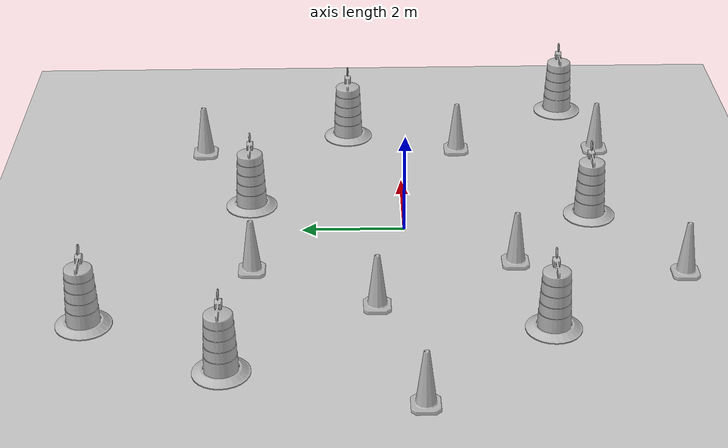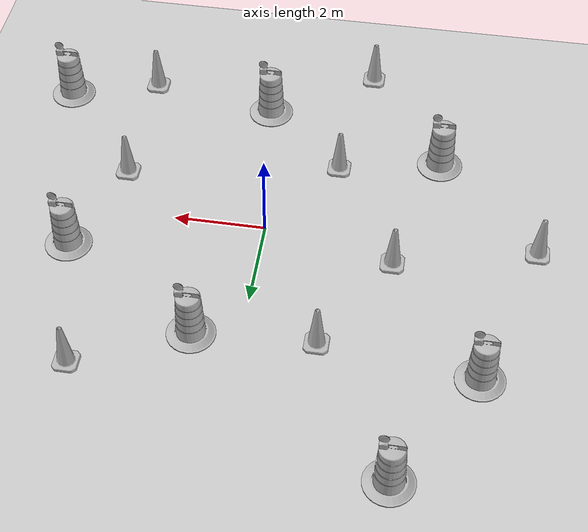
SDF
<sdf version="1.7">
 <world name="default">
  <light name="sun" type="directional">
   <pose>0 0 10 0 -0 0</pose>
   <diffuse>0.8 0.8 0.8 1</diffuse>
   <specular>0.2 0.2 0.2 1</specular>
   <attenuation>
    <range>1000</range>
    <constant>0.9</constant>
    <linear>0.01</linear>
    <quadratic>0.001</quadratic>
   </attenuation>
   <direction>-0.5 0.1 -0.9</direction>
   <spot><inner_angle>0</inner_angle><outer_angle>0</outer_angle><falloff>0</falloff></spot>
  </light>
  <model name="ground_plane">
   <static>1</static>
   <link name="link">
    <collision name="collision">
     <geometry><plane><normal>0 0 1</normal><size>100 100</size></plane></geometry>
     <surface><friction><ode><mu>100</mu><mu2>50</mu2></ode></friction></surface>
    </collision>
    <visual name="visual">
     <cast_shadows>0</cast_shadows>
     <geometry><plane><normal>0 0 1</normal><size>100 100</size></plane></geometry>
     <material>
      <script><uri>file://media/materials/scripts/gazebo.material</uri><name>Gazebo/Grey</name></script>
     </material>
    </visual>
   </link>
  </model>
  <gravity>0 0 -9.8</gravity>
  <magnetic_field>6e-06 2.3e-05 -4.2e-05</magnetic_field>
  <atmosphere type="adiabatic"/>
  <physics type="ode">
   <max_step_size>0.001</max_step_size>
   <real_time_factor>1</real_time_factor>
   <real_time_update_rate>1000</real_time_update_rate>
  </physics>
  <scene><ambient>0.4 0.4 0.4 1</ambient><background>0.7 0.7 0.7 1</background><shadows>1</shadows></scene>
  <audio><device>default</device></audio>
  <spherical_coordinates>
   <surface_model>EARTH_WGS84</surface_model>
   <latitude_deg>0</latitude_deg>
   <longitude_deg>0</longitude_deg>
   <elevation>0</elevation>
   <heading_deg>0</heading_deg>
  </spherical_coordinates>
  <model name="Construction Cone">
   <link name="link">
    <collision name="collision">
     <geometry>
      <mesh><scale>10 10 10</scale><uri>model://construction_cone/meshes/construction_cone.dae</uri></mesh>
     </geometry>
    </collision>
    <visual name="visual">
     <geometry>
      <mesh><scale>10 10 10</scale><uri>model://construction_cone/meshes/construction_cone.dae</uri></mesh>
     </geometry>
    </visual>
    <inertial>
     <inertia><ixx>1</ixx><ixy>0</ixy><ixz>0</ixz><iyy>1</iyy><iyz>0</iyz><izz>1</izz></inertia>
     <mass>1</mass>
    </inertial>
   </link>
   <pose>-2.82409 0.594836 0 -0 -0 -0</pose>
  </model>
  <model name="Construction Cone_0">
   <link name="link">
    <collision name="collision">
     <geometry>
      <mesh><scale>10 10 10</scale><uri>model://construction_cone/meshes/construction_cone.dae</uri></mesh>
     </geometry>
    </collision>
    <visual name="visual">
     <geometry>
      <mesh><scale>10 10 10</scale><uri>model://construction_cone/meshes/construction_cone.dae</uri></mesh>
     </geometry>
    </visual>
    <inertial>
     <inertia><ixx>1</ixx><ixy>0</ixy><ixz>0</ixz><iyy>1</iyy><iyz>0</iyz><izz>1</izz></inertia>
     <mass>1</mass>
    </inertial>
   </link>
   <pose>3.33471 -1.2183 -0 0 -0 0</pose>
  </model>
  <model name="Construction Barrel">
   <link name="link">
    <inertial>
     <pose>0 0 0.4 0 -0 0</pose>
     <mass>500</mass>
     <inertia><ixx>51.2096</ixx><iyy>51.2096</iyy><izz>25</izz><ixy>0</ixy><ixz>0</ixz><iyz>0</iyz></inertia>
    </inertial>
    <collision name="collision">
     <geometry><mesh><uri>model://construction_barrel/meshes/construction_barrel.dae</uri></mesh></geometry>
    </collision>
    <visual name="visual">
     <geometry><mesh><uri>model://construction_barrel/meshes/construction_barrel.dae</uri></mesh></geometry>
    </visual>
   </link>
   <pose>0.468953 -3.67931 -1e-06 -8e-06 -2e-06 -3.2e-05</pose>
  </model>
  <model name="Construction Barrel_0">
   <link name="link">
    <inertial>
     <pose>0 0 0.4 0 -0 0</pose>
     <mass>500</mass>
     <inertia><ixx>51.2096</ixx><iyy>51.2096</iyy><izz>25</izz><ixy>0</ixy><ixz>0</ixz><iyz>0</iyz></inertia>
    </inertial>
    <collision name="collision">
     <geometry><mesh><uri>model://construction_barrel/meshes/construction_barrel.dae</uri></mesh></geometry>
    </collision>
    <visual name="visual">
     <geometry><mesh><uri>model://construction_barrel/meshes/construction_barrel.dae</uri></mesh></geometry>
    </visual>
   </link>
   <pose>-3.59891 -2.51005 -2e-06 1e-06 8e-06 -2.1e-05</pose>
  </model>
  <model name="Construction Cone_1">
   <link name="link">
    <collision name="collision">
     <geometry>
      <mesh><scale>10 10 10</scale><uri>model://construction_cone/meshes/construction_cone.dae</uri></mesh>
     </geometry>
    </collision>
    <visual name="visual">
     <geometry>
      <mesh><scale>10 10 10</scale><uri>model://construction_cone/meshes/construction_cone.dae</uri></mesh>
     </geometry>
    </visual>
    <inertial>
     <inertia><ixx>1</ixx><ixy>0</ixy><ixz>0</ixz><iyy>1</iyy><iyz>0</iyz><izz>1</izz></inertia>
     <mass>1</mass>
    </inertial>
   </link>
   <pose>-5.8521 -0.138619 -0 0 -0 0</pose>
  </model>
  <model name="Construction Cone_2">
   <link name="link">
    <collision name="collision">
     <geometry>
      <mesh><scale>10 10 10</scale><uri>model://construction_cone/meshes/construction_cone.dae</uri></mesh>
     </geometry>
    </collision>
    <visual name="visual">
     <geometry>
      <mesh><scale>10 10 10</scale><uri>model://construction_cone/meshes/construction_cone.dae</uri></mesh>
     </geometry>
    </visual>
    <inertial>
     <inertia><ixx>1</ixx><ixy>0</ixy><ixz>0</ixz><iyy>1</iyy><iyz>0</iyz><izz>1</izz></inertia>
     <mass>1</mass>
    </inertial>
   </link>
   <pose>-1.53334 2.91123 -0 0 -1e-06 0</pose>
  </model>
  <model name="Construction Cone_3">
   <link name="link">
    <collision name="collision">
     <geometry>
      <mesh><scale>10 10 10</scale><uri>model://construction_cone/meshes/construction_cone.dae</uri></mesh>
     </geometry>
    </collision>
    <visual name="visual">
     <geometry>
      <mesh><scale>10 10 10</scale><uri>model://construction_cone/meshes/construction_cone.dae</uri></mesh>
     </geometry>
    </visual>
    <inertial>
     <inertia><ixx>1</ixx><ixy>0</ixy><ixz>0</ixz><iyy>1</iyy><iyz>0</iyz><izz>1</izz></inertia>
     <mass>1</mass>
    </inertial>
   </link>
   <pose>3.30425 -4.1744 -0 0 -0 0</pose>
  </model>
  <model name="Construction Barrel_1">
   <link name="link">
    <inertial>
     <pose>0 0 0.4 0 -0 0</pose>
     <mass>500</mass>
     <inertia><ixx>51.2096</ixx><iyy>51.2096</iyy><izz>25</izz><ixy>0</ixy><ixz>0</ixz><iyz>0</iyz></inertia>
    </inertial>
    <collision name="collision">
     <geometry><mesh><uri>model://construction_barrel/meshes/construction_barrel.dae</uri></mesh></geometry>
    </collision>
    <visual name="visual">
     <geometry><mesh><uri>model://construction_barrel/meshes/construction_barrel.dae</uri></mesh></geometry>
    </visual>
   </link>
   <pose>1.00243 3.03143 -1e-06 5e-06 -3e-06 -1.5e-05</pose>
  </model>
  <model name="Construction Barrel_2">
   <link name="link">
    <inertial>
     <pose>0 0 0.4 0 -0 0</pose>
     <mass>500</mass>
     <inertia><ixx>51.2096</ixx><iyy>51.2096</iyy><izz>25</izz><ixy>0</ixy><ixz>0</ixz><iyz>0</iyz></inertia>
    </inertial>
    <collision name="collision">
     <geometry><mesh><uri>model://construction_barrel/meshes/construction_barrel.dae</uri></mesh></geometry>
    </collision>
    <visual name="visual">
     <geometry><mesh><uri>model://construction_barrel/meshes/construction_barrel.dae</uri></mesh></geometry>
    </visual>
   </link>
   <pose>4.08953 1.07816 -3e-06 6e-06 1.1e-05 -1.5e-05</pose>
  </model>
  <model name="Construction Barrel_3">
   <link name="link">
    <inertial>
     <pose>0 0 0.4 0 -0 0</pose>
     <mass>500</mass>
     <inertia><ixx>51.2096</ixx><iyy>51.2096</iyy><izz>25</izz><ixy>0</ixy><ixz>0</ixz><iyz>0</iyz></inertia>
    </inertial>
    <collision name="collision">
     <geometry><mesh><uri>model://construction_barrel/meshes/construction_barrel.dae</uri></mesh></geometry>
    </collision>
    <visual name="visual">
     <geometry><mesh><uri>model://construction_barrel/meshes/construction_barrel.dae</uri></mesh></geometry>
    </visual>
   </link>
   <pose>-4.80816 3.28417 -1e-06 1e-06 -1e-06 -1.3e-05</pose>
  </model>
  <model name="Construction Cone_4">
   <link name="link">
    <collision name="collision">
     <geometry>
      <mesh><scale>10 10 10</scale><uri>model://construction_cone/meshes/construction_cone.dae</uri></mesh>
     </geometry>
    </collision>
    <visual name="visual">
     <geometry>
      <mesh><scale>10 10 10</scale><uri>model://construction_cone/meshes/construction_cone.dae</uri></mesh>
     </geometry>
    </visual>
    <inertial>
     <inertia><ixx>1</ixx><ixy>0</ixy><ixz>0</ixz><iyy>1</iyy><iyz>0</iyz><izz>1</izz></inertia>
     <mass>1</mass>
    </inertial>
   </link>
   <pose>-1.81707 -5.18129 -0 0 -1e-06 0</pose>
  </model>
  <model name="Construction Cone_5">
   <link name="link">
    <collision name="collision">
     <geometry>
      <mesh><scale>10 10 10</scale><uri>model://construction_cone/meshes/construction_cone.dae</uri></mesh>
     </geometry>
    </collision>
    <visual name="visual">
     <geometry>
      <mesh><scale>10 10 10</scale><uri>model://construction_cone/meshes/construction_cone.dae</uri></mesh>
     </geometry>
    </visual>
    <inertial>
     <inertia><ixx>1</ixx><ixy>0</ixy><ixz>0</ixz><iyy>1</iyy><iyz>0</iyz><izz>1</izz></inertia>
     <mass>1</mass>
    </inertial>
   </link>
   <pose>-1.3614 -2.04336 -1e-05 -1e-06 0 0</pose>
  </model>
  <model name="Construction Cone_6">
   <link name="link">
    <collision name="collision">
     <geometry>
      <mesh><scale>10 10 10</scale><uri>model://construction_cone/meshes/construction_cone.dae</uri></mesh>
     </geometry>
    </collision>
    <visual name="visual">
     <geometry>
      <mesh><scale>10 10 10</scale><uri>model://construction_cone/meshes/construction_cone.dae</uri></mesh>
     </geometry>
    </visual>
    <inertial>
     <inertia><ixx>1</ixx><ixy>0</ixy><ixz>0</ixz><iyy>1</iyy><iyz>0</iyz><izz>1</izz></inertia>
     <mass>1</mass>
    </inertial>
   </link>
   <pose>3.28912 4.10829 -0 0 -1e-06 0</pose>
  </model>
  <model name="Construction Barrel_4">
   <link name="link">
    <inertial>
     <pose>0 0 0.4 0 -0 0</pose>
     <mass>500</mass>
     <inertia><ixx>51.2096</ixx><iyy>51.2096</iyy><izz>25</izz><ixy>0</ixy><ixz>0</ixz><iyz>0</iyz></inertia>
    </inertial>
    <collision name="collision">
     <geometry><mesh><uri>model://construction_barrel/meshes/construction_barrel.dae</uri></mesh></geometry>
    </collision>
    <visual name="visual">
     <geometry><mesh><uri>model://construction_barrel/meshes/construction_barrel.dae</uri></mesh></geometry>
    </visual>
   </link>
   <pose>5.26464 -3.60271 -0 0 -0 -7e-06</pose>
  </model>
  <model name="Construction Barrel_5">
   <link name="link">
    <inertial>
     <pose>0 0 0.4 0 -0 0</pose>
     <mass>500</mass>
     <inertia><ixx>51.2096</ixx><iyy>51.2096</iyy><izz>25</izz><ixy>0</ixy><ixz>0</ixz><iyz>0</iyz></inertia>
    </inertial>
    <collision name="collision">
     <geometry><mesh><uri>model://construction_barrel/meshes/construction_barrel.dae</uri></mesh></geometry>
    </collision>
    <visual name="visual">
     <geometry><mesh><uri>model://construction_barrel/meshes/construction_barrel.dae</uri></mesh></geometry>
    </visual>
   </link>
   <pose>-3.27439 5.81534 -1e-06 4e-06 -2e-06 -4e-06</pose>
  </model>
 </world>
</sdf>
